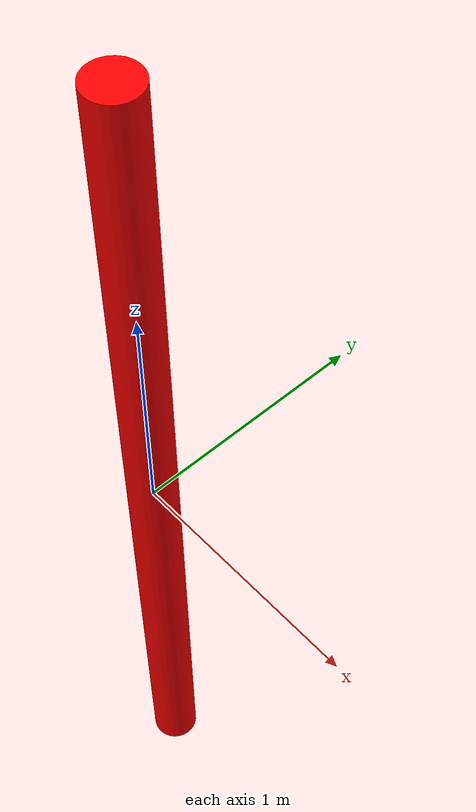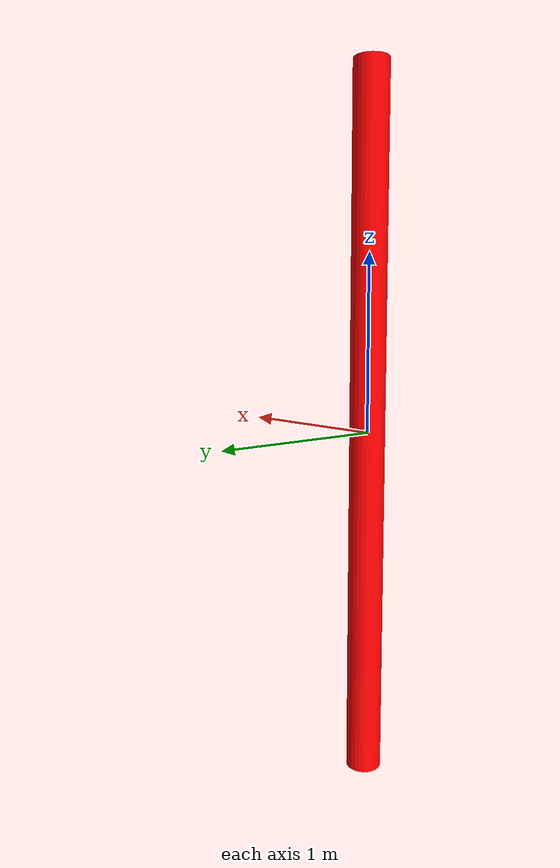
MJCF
<mujoco>
  <option gravity="0 0 -9.81" />
  <worldbody>
    <body name="object_1" pos="0 0 0">
      <geom type="cylinder" size="0.1 2" density="3" rgba="1 0 0 1" />
      <joint name="object_1_joint" type="hinge" axis="0 0 1" />
    </body>
    <body name="object_2" pos="0 0 -10">
      <geom type="plane" size="30 30 0.1" rgba="0.7 0.7 0.7 1" friction="1 1 1" />
    </body>
  </worldbody>
</mujoco>
